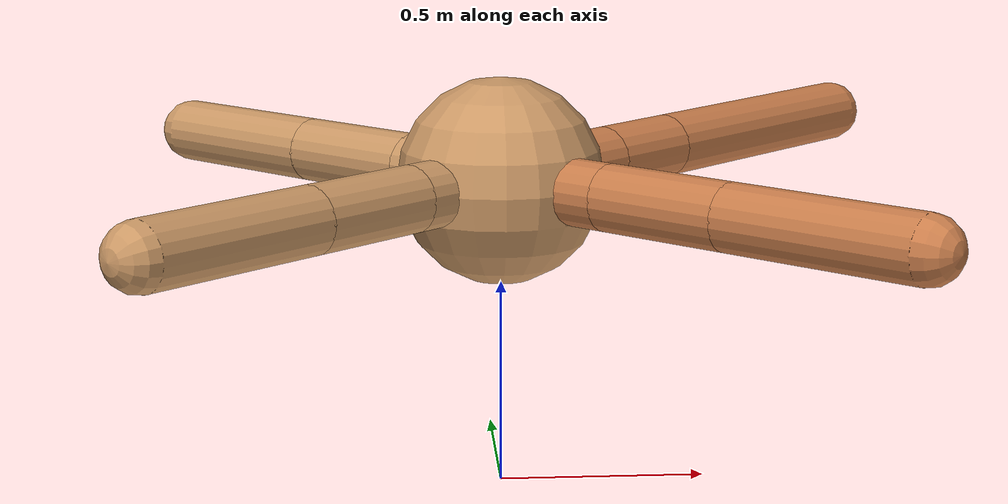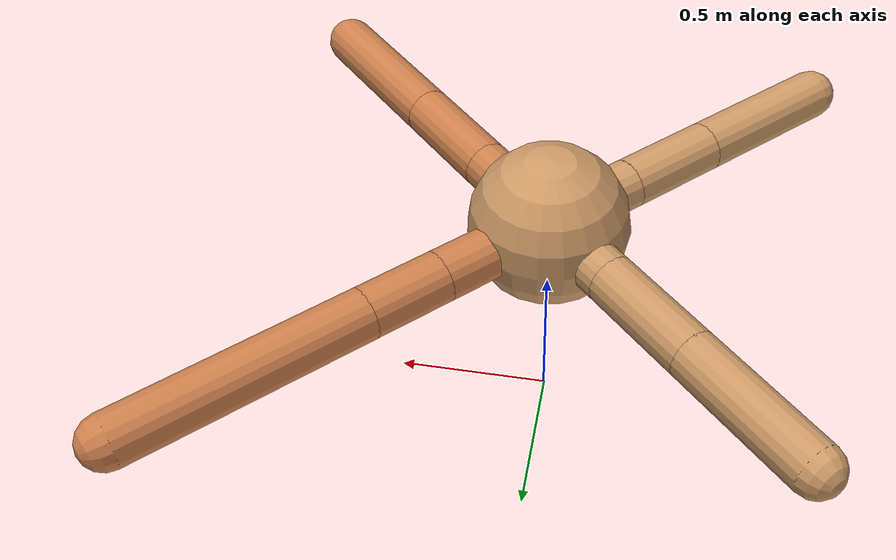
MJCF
<mujoco model="ant">
  <compiler angle="degree" coordinate="local" inertiafromgeom="true" />
  <option integrator="RK4" timestep="0.01" />
  <custom>
    <numeric data="0.0 0.0 0.55 1.0 0.0 0.0 0.0 0.0 1.0 0.0 -1.0 0.0 -1.0 0.0 1.0" name="init_qpos" />
  </custom>
  <default>
    <joint armature="1" damping="1" limited="true" />
    <geom conaffinity="0" condim="3" density="5.0" friction="1.5 0.1 0.1" margin="0.01" rgba="0.8 0.6 0.4 1" />
  </default>
  <worldbody>
    <body name="torso" pos="0 0 0.75">
      <geom name="torso_geom" pos="0 0 0" size="0.25" type="sphere" />

      <body name="front_left_leg" pos="0 0 0">
        <geom fromto="0.0 0.0 0.0 0.2795678091760578 0.2795678091760578 0.0" name="aux_1_geom" size="0.08" type="capsule" rgba=".8 .5 .3 1" />
        <body name="aux_1" pos="0.2795678091760578 0.2795678091760578 0.0">
          <joint axis="0 0 1" name="hip_1" pos="0.0 0.0 0.0" range="-40 40" type="hinge" />
          <geom fromto="0.0 0.0 0.0 0.1773533804593309 0.1773533804593309 0.0" name="left_leg_geom" size="0.08" type="capsule" rgba=".8 .5 .3 1" />
          <body pos="0.1773533804593309 0.1773533804593309 0.0" name="front_left_foot">
            <joint axis="-1 1 0" name="ankle_1" pos="0.0 0.0 0.0" range="30 100" type="hinge" />
            <geom fromto="0.0 0.0 0.0 0.5429709775873524 0.5429709775873524 0.0" name="left_ankle_geom" size="0.08" type="capsule" rgba=".8 .5 .3 1" />
          </body>
        </body>
      </body>
      <body name="front_right_leg" pos="0 0 0">
        <geom fromto="0.0 0.0 0.0 -0.20961738740496869 0.20961738740496869 0.0" name="aux_2_geom" size="0.08" type="capsule" />
        <body name="aux_2" pos="-0.20961738740496869 0.20961738740496869 0.0">
          <joint axis="0 0 1" name="hip_2" pos="0.0 0.0 0.0" range="-40 40" type="hinge" />
          <geom fromto="0.0 0.0 0.0 -0.2487210479645353 0.2487210479645353 0.0" name="right_leg_geom" size="0.08" type="capsule" />
          <body pos="-0.2487210479645353 0.2487210479645353 0.0" name="front_right_foot">
            <joint axis="1 1 0" name="ankle_2" pos="0.0 0.0 0.0" range="-100 -30" type="hinge" />
            <geom fromto="0.0 0.0 0.0 -0.3294059719358387 0.3294059719358387 0.0" name="right_ankle_geom" size="0.08" type="capsule" />
          </body>
        </body>
      </body>
      <body name="left_back_leg" pos="0 0 0">
        <geom fromto="0.0 0.0 0.0 -0.21905781978499606 -0.21905781978499606 0.0" name="aux_3_geom" size="0.08" type="capsule" />
        <body name="aux_3" pos="-0.21905781978499606 -0.21905781978499606 0.0">
          <joint axis="0 0 1" name="hip_3" pos="0.0 0.0 0.0" range="-40 40" type="hinge" />
          <geom fromto="0.0 0.0 0.0 -0.22482040396651312 -0.22482040396651312 0.0" name="back_leg_geom" size="0.08" type="capsule" />
          <body pos="-0.22482040396651312 -0.22482040396651312 0.0" name="left_back_foot">
            <joint axis="-1 1 0" name="ankle_3" pos="0.0 0.0 0.0" range="-100 -30" type="hinge" />
            <geom fromto="0.0 0.0 0.0 -0.3431198627064074 -0.3431198627064074 0.0" name="third_ankle_geom" size="0.08" type="capsule" />
          </body>
        </body>
      </body>
      <body name="right_back_leg" pos="0 0 0">
        <geom fromto="0.0 0.0 0.0 0.23539094199057053 -0.23539094199057053 0.0" name="aux_4_geom" size="0.08" type="capsule" rgba=".8 .5 .3 1" />
        <body name="aux_4" pos="0.23539094199057053 -0.23539094199057053 0.0">
          <joint axis="0 0 1" name="hip_4" pos="0.0 0.0 0.0" range="-40 40" type="hinge" />
          <geom fromto="0.0 0.0 0.0 0.24138902414203997 -0.24138902414203997 0.0" name="rightback_leg_geom" size="0.08" type="capsule" rgba=".8 .5 .3 1" />
          <body pos="0.24138902414203997 -0.24138902414203997 0.0" name="right_back_foot">
            <joint axis="1 1 0" name="ankle_4" pos="0.0 0.0 0.0" range="30 100" type="hinge" />
            <geom fromto="0.0 0.0 0.0 0.3606471391956074 -0.3606471391956074 0.0" name="fourth_ankle_geom" size="0.08" type="capsule" rgba=".8 .5 .3 1" />
          </body>
        </body>
      </body>
    </body>
  </worldbody>
  <actuator>
    <motor ctrllimited="true" ctrlrange="-1.0 1.0" joint="hip_4" gear="150" />
    <motor ctrllimited="true" ctrlrange="-1.0 1.0" joint="ankle_4" gear="150" />
    <motor ctrllimited="true" ctrlrange="-1.0 1.0" joint="hip_1" gear="150" />
    <motor ctrllimited="true" ctrlrange="-1.0 1.0" joint="ankle_1" gear="150" />
    <motor ctrllimited="true" ctrlrange="-1.0 1.0" joint="hip_2" gear="150" />
    <motor ctrllimited="true" ctrlrange="-1.0 1.0" joint="ankle_2" gear="150" />
    <motor ctrllimited="true" ctrlrange="-1.0 1.0" joint="hip_3" gear="150" />
    <motor ctrllimited="true" ctrlrange="-1.0 1.0" joint="ankle_3" gear="150" />
  </actuator>
</mujoco>
